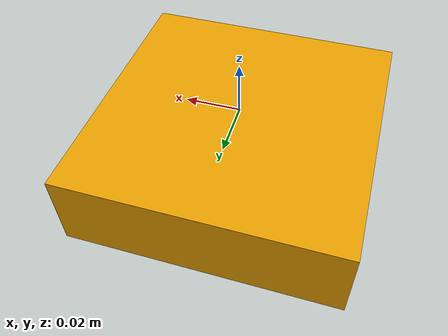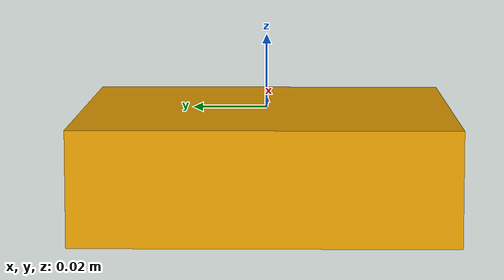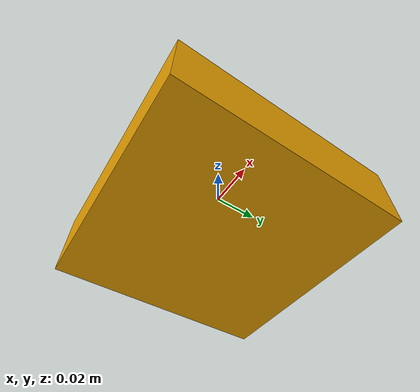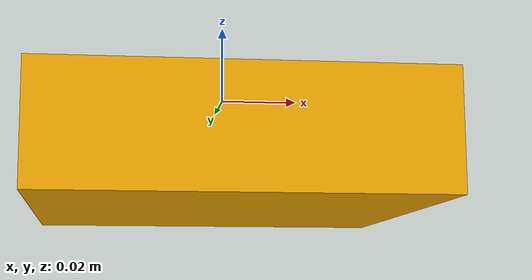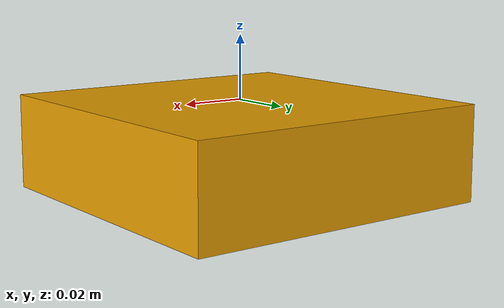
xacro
<?xml version="1.0"?>
<robot name="small_cube" xmlns:xacro="http://ros.org/wiki/xacro">
  <!-- Definir un cubo pequeño de 15cm x 15cm con textura -->
  <link name="small_cube_link">
    <visual>
      <origin xyz="0 0 -0.015" rpy="0 0 0"/> <!-- Colocar el cubo en el suelo (0.075m de altura) -->
      <geometry>
        <box size="0.1 0.1 0.03"/> <!-- Tamaño del cubo: 15cm x 15cm x 15cm -->
      </geometry>
      <material name="texture_material">
        <texture filename="package://Teleoperacion-VisionArtificial/src/simulate/urdf/pruebatecnica.png"/> <!-- Aplicar la textura -->
      </material>
    </visual>
    <collision>
      <origin xyz="0 0 0" rpy="0 0 0"/>
      <geometry>
        <box size="0.15 0.15 0.15"/> <!-- Colisión del cubo -->
      </geometry>
    </collision>
    <inertial>
      <origin xyz="0 0 0" rpy="0 0 0"/>
      <mass value="0.1"/> <!-- Masa del cubo (ajusta según sea necesario) -->
      <inertia ixx="0.001" ixy="0" ixz="0" iyy="0.001" iyz="0" izz="0.001"/>
    </inertial>
  </link>
</robot>
